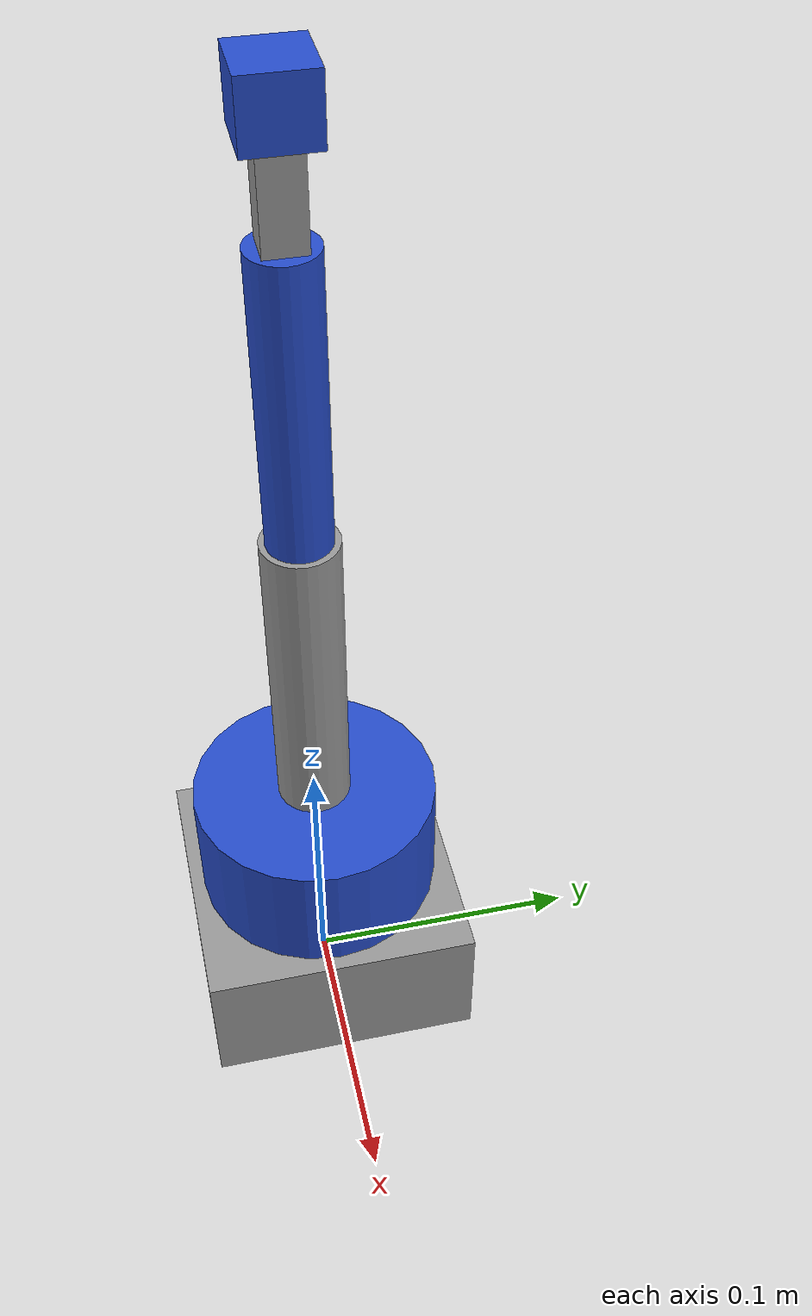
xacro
<?xml version="1.0"?>
<robot xmlns:xacro="http://www.ros.org/wiki/xacro">

    <link name="base_link">
        <visual>
            <geometry>
                <box size="0.098 0.098 0.05087" />
            </geometry>
            <origin xyz="0 0 0.025435" rpy="0 0 0" />
            <material name="grey" />
        </visual>
        <collision>
            <geometry>
                <box size="0.098 0.098 0.05087" />
            </geometry>
            <origin xyz="0 0 0.025435" rpy="0 0 0" />
        </collision>
    </link>

    <link name="shoulder_link">
        <visual>
            <geometry>
                <cylinder length="0.04601" radius="0.044" />
            </geometry>
            <origin xyz="0 0 0.023005" rpy="0 0 0" />
            <material name="blue" />
        </visual>
        <collision>
            <geometry>
                <cylinder length="0.04601" radius="0.044" />
            </geometry>
            <origin xyz="0 0 0.023005" rpy="0 0 0" />
        </collision>
    </link>

    <link name="arm_link">
        <visual>
            <geometry>
                <cylinder length="0.11312" radius="0.013" />
            </geometry>
            <origin xyz="0 0 0.05656" rpy="0 0 0" />
            <material name="grey" />
        </visual>
        <collision>
            <geometry>
                <box size="0.026 0.026 0.11312" />
            </geometry>
            <origin xyz="0 0 0.05656" rpy="0 0 0" />
        </collision>
    </link>

    <link name="elbow_link">
        <visual>
            <geometry>
                <cylinder length="0.09795" radius="0.010885" />
            </geometry>
            <origin xyz="0 0 0.048975" rpy="0 0 0" />
            <material name="blue" />
        </visual>
        <collision>
            <geometry>
                <box size="0.02177 0.02177 0.09795" />
            </geometry>
            <origin xyz="0 0 0.048975" rpy="0 0 0" />
        </collision>
    </link>

    <link name="forearm_link">
        <visual>
            <geometry>
                <box size="0.013 0.013 0.02908" />
            </geometry>
            <origin xyz="0 0 0.01454" rpy="0 0 0" />
            <material name="grey" />
        </visual>
        <collision>
            <geometry>
                <box size="0.013 0.013 0.02908" />
            </geometry>
            <origin xyz="0 0 0.01454" rpy="0 0 0" />
        </collision>
    </link>

    <link name="wrist_link">
        <visual>
            <geometry>
                <box size="0.02177 0.02177 0.01999" />
            </geometry>
            <origin xyz="0 0 0.009995" rpy="0 0 0" />
            <material name="blue" />
        </visual>
        <collision>
            <geometry>
                <box size="0.02177 0.02177 0.01099" />
            </geometry>
            <origin xyz="0 0 0.009995" rpy="0 0 0" />
        </collision>
    </link>

    <link name="tool_link" />

    <joint name="joint1" type="revolute">
        <parent link="base_link" />
        <child link="shoulder_link" />
        <origin xyz="0 0 0.05087" rpy="0 0 0" />
        <axis xyz="0 0 1" />
        <limit effort="1000.0" velocity="1.0" lower="-1.57" upper="1.57" />
    </joint>

    <joint name="joint2" type="revolute">
        <parent link="shoulder_link" />
        <child link="arm_link" />
        <origin xyz="0 0 0.04601" rpy="0 0 0" />
        <axis xyz="0 1 0" />
        <limit effort="1000.0" velocity="1.0" lower="-1.57" upper="1.57" />
    </joint>

    <joint name="joint3" type="revolute">
        <parent link="arm_link" />
        <child link="elbow_link" />
        <origin xyz="0 0 0.11312" rpy="0 0 0" />
        <axis xyz="0 1 0" />
        <limit effort="1000.0" velocity="1.0" lower="-1.57" upper="1.57" />
    </joint>

    <joint name="joint4" type="revolute">
        <parent link="elbow_link" />
        <child link="forearm_link" />
        <origin xyz="0 0 0.09795" rpy="0 0 0" />
        <axis xyz="0 0 1" />
        <limit effort="1000.0" velocity="1.0" lower="-1.57" upper="1.57" />
    </joint>

    <joint name="joint5" type="revolute">
        <parent link="forearm_link" />
        <child link="wrist_link" />
        <origin xyz="0 0 0.02908" rpy="0 0 0" />
        <axis xyz="0 1 0" />
        <limit effort="1000.0" velocity="1.0" lower="-1.57" upper="1.57" />
    </joint>

    <joint name="hand_tool_joint" type="fixed">
        <parent link="wrist_link" />
        <child link="tool_link" />
        <origin xyz="0 0 0.009995" rpy="0 0 0" />
    </joint>

</robot>
